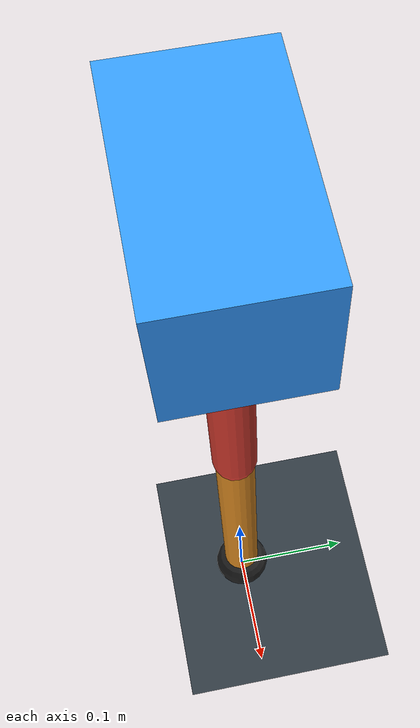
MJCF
<mujoco model="single_axis_two_bar">
  <compiler angle="radian" inertiafromgeom="true"/>
  <option timestep="0.001" integrator="implicitfast" gravity="0 0 -9.81"/>
  <default>
    <joint damping="0.08"/>
    <geom friction="1.2 0.01 0.0001" condim="3"/>
  </default>
  <worldbody>
    <geom name="floor" type="plane" size="5 5 0.1" rgba="0.18 0.22 0.25 1"/>
    <body name="carriage" pos="0 0 0.5489521101737902">
      <joint name="pole_slide" type="slide" axis="0 0 1"/>
      <geom name="payload" type="box" size="0.08 0.05 0.05" mass="2.6345584121325087" rgba="0.2 0.6 1 1"/>
      <body name="thigh" pos="0 0 0">
        <joint name="hip" type="hinge" axis="0 1 0"/>
        <geom name="thigh_link" type="capsule" fromto="0 0 0 0 0 -0.29280618612968357" size="0.018" mass="0.20862827670978557" rgba="0.9 0.25 0.2 1"/>
        <body name="shank" pos="0 0 -0.29280618612968357">
          <joint name="knee" type="hinge" axis="0 1 0"/>
          <geom name="shank_link" type="capsule" fromto="0 0 0 0 0 -0.24735062848247127" size="0.016" mass="0.17624059124394614" rgba="0.95 0.6 0.15 1"/>
          <geom name="foot" type="sphere" pos="0 0 -0.24735062848247127" size="0.025" mass="0.03" rgba="0.15 0.15 0.15 1"/>
          <site name="toe" pos="0 0 -0.24735062848247127" size="0.008"/>
        </body>
      </body>
    </body>
  </worldbody>
  <actuator>
    <motor name="hip_motor" joint="hip" ctrlrange="-34.037854923791784 34.037854923791784"/>
    <motor name="knee_motor" joint="knee" ctrlrange="-51.48695300146458 51.48695300146458"/>
  </actuator>
</mujoco>
